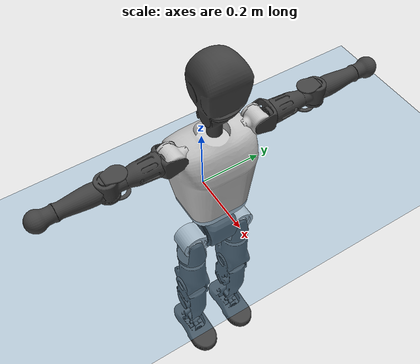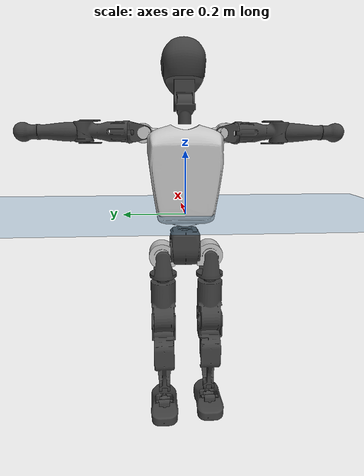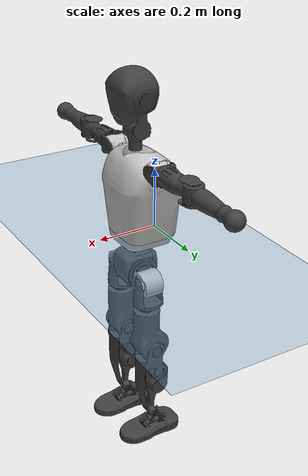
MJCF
<mujoco model="T1">
  <compiler angle="radian" assetdir="assets" balanceinertia="true" inertiafromgeom="false"/>

  <option timestep="0.005" density="1.2" viscosity="2e-05"/>

  <size nkey="1"/>

  <visual>
    <quality shadowsize="8192"/>
    <map shadowclip="0.5"/>
  </visual>

  <default>
    <default class="/">
      <joint armature="0.01" damping="0.01" frictionloss="0.1"/>
      <geom contype="0" conaffinity="0" group="1" solref="-1000 -80"/>
      <site size="0.01 0.005 0.005" group="5"/>
      <general forcelimited="true" biastype="affine" gainprm="25" biasprm="0 -25 -0.6"/>
      <default class="t1">
        <geom rgba="0.25 0.25 0.25 1"/>
        <default class="visual">
          <geom type="mesh" group="2"/>
        </default>
        <default class="collision">
          <geom group="3"/>
        </default>
        <default class="foot">
          <geom size="0.1115 0.05 0.015" type="box" condim="6" group="4" priority="1" solimp="0.015 1 0.015"/>
        </default>
        <default class="reward_collision_sphere">
          <geom group="5" rgba="1 0 0 1"/>
        </default>
      </default>
    </default>
  </default>

  <asset>
    <texture type="skybox" colorspace="auto" name="//unnamed_texture_0" builtin="gradient" rgb1="0.95 0.95 0.95" rgb2="0.95 0.95 0.95" width="100" height="600"/>
    <texture type="2d" colorspace="auto" name="texplane" builtin="checker" rgb1="0.345 0.575 0.748" rgb2="0.345 0.575 0.748" markrgb="1 1 1" width="512" height="512"/>
    <material name="MatPlane" class="/" texture="texplane" texuniform="true" texrepeat="2 2" specular="0.9"/>
    <mesh name="Trunk" class="/" file="Trunk.stl"/>
    <mesh name="H1" class="/" file="H1.stl"/>
    <mesh name="H2" class="/" file="H2.stl"/>
    <mesh name="AL1" class="/" file="AL1.stl"/>
    <mesh name="AL2" class="/" file="AL2.stl"/>
    <mesh name="AL3" class="/" file="AL3.stl"/>
    <mesh name="left_hand_link" class="/" file="left_hand_link.stl"/>
    <mesh name="AR1" class="/" file="AR1.stl"/>
    <mesh name="AR2" class="/" file="AR2.stl"/>
    <mesh name="AR3" class="/" file="AR3.stl"/>
    <mesh name="right_hand_link" class="/" file="right_hand_link.stl"/>
    <mesh name="Waist" class="/" file="Waist.stl"/>
    <mesh name="Hip_Pitch_Left" class="/" file="Hip_Pitch_Left.stl"/>
    <mesh name="Hip_Roll_Left" class="/" file="Hip_Roll_Left.stl"/>
    <mesh name="Hip_Yaw_Left" class="/" file="Hip_Yaw_Left.stl"/>
    <mesh name="Shank_Left" class="/" file="Shank_Left.stl"/>
    <mesh name="Ankle_Cross_Left" class="/" file="Ankle_Cross_Left.stl"/>
    <mesh name="left_foot_link" class="/" file="left_foot_link.stl"/>
    <mesh name="Hip_Pitch_Right" class="/" file="Hip_Pitch_Right.stl"/>
    <mesh name="Hip_Roll_Right" class="/" file="Hip_Roll_Right.stl"/>
    <mesh name="Hip_Yaw_Right" class="/" file="Hip_Yaw_Right.stl"/>
    <mesh name="Shank_Right" class="/" file="Shank_Right.stl"/>
    <mesh name="Ankle_Cross_Right" class="/" file="Ankle_Cross_Right.stl"/>
    <mesh name="right_foot_link" class="/" file="right_foot_link.stl"/>
  </asset>

  <worldbody>
    <geom name="floor" class="/" size="100 100 0.125" type="plane" group="0" material="MatPlane"/>
    <light name="toplight_shadow" class="/" pos="0 0 5" dir="0.0990148 0.0990148 -0.990148" type="directional" ambient="0.04 0.04 0.04" diffuse="0.55 0.55 0.55" specular="0.12 0.12 0.12"/>
    <light name="toplight_fill" class="/" pos="0 0 5" dir="0.0990148 0.0990148 -0.990148" type="directional" castshadow="false" ambient="0.04 0.04 0.04" diffuse="0.3 0.3 0.3" specular="0.08 0.08 0.08"/>
    <body name="trunk" childclass="t1" pos="-0.000120721 -0.00222311 0.000214415" quat="1 -0.000126864 -0.000255304 0.000163149">
      <inertial pos="0.0619774 -0.00287606 0.121234" quat="0.999933 0.00086082 -0.0113598 -0.00216239" mass="12.5875" diaginertia="0.163514 0.0238224 0.108462"/>
      <joint name="//unnamed_joint_0" type="free" armature="0" damping="0" frictionloss="0"/>
      <geom name="//unnamed_geom_1" class="visual" rgba="0.76 0.76 0.76 1" mesh="Trunk"/>
      <geom name="//unnamed_geom_2" class="collision" size="0.0768708 0.102494 0.153742" pos="0.0680569 0 0.137681" type="box"/>
      <geom name="//unnamed_geom_3" class="reward_collision_sphere" size="0.117869" pos="0.0680569 0 0.114734"/>
      <geom name="//unnamed_geom_4" class="reward_collision_sphere" size="0.0153742" pos="0.0680569 0.0674226 0"/>
      <geom name="//unnamed_geom_5" class="reward_collision_sphere" size="0.0153742" pos="0.0680569 -0.0674226 0"/>
      <geom name="//unnamed_geom_6" class="reward_collision_sphere" size="0.0153742" pos="0.0680569 0.0848732 0.206522"/>
      <geom name="//unnamed_geom_7" class="reward_collision_sphere" size="0.0153742" pos="0.0680569 -0.0848732 0.206522"/>
      <site name="imu" pos="0.00446921 -0.000962411 -0.00498543" size="0.0102494"/>
      <camera name="track" pos="0 -1.58642 0" quat="0.707107 0.707107 0 0" mode="trackcom"/>
      <camera name="ego_camera" pos="0.138382 0 0.481884" quat="-0.5 -0.5 0.5 0.5"/>
      <body name="H1" pos="0.0703599 0.000123293 0.280487" quat="1 0.000322327 -0.000117879 0.000155402">
        <inertial pos="-0.000481573 -0.00227833 0.0658121" quat="0.762202 -0.0166648 1.38009e-05 0.647125" mass="0.487425" diaginertia="0.00044656 7.2998e-05 0.000300276"/>
        <joint name="AAHead_yaw" pos="0 0 0" axis="-0.00531554 0.0088879 0.999946" stiffness="0.000222835" range="-1.55047 1.56707" armature="0.00942862" damping="0.00905369" frictionloss="0.0967923"/>
        <geom name="//unnamed_geom_8" class="visual" mesh="H1"/>
        <body name="H2" pos="-0.00346596 0.00328548 0.0682743" quat="0.999999 -0.00139158 -0.000149645 -0.000201917">
          <inertial pos="0.00845577 0.00104155 0.115666" quat="0.988452 0.106186 -0.0745666 -0.0782776" mass="0.701359" diaginertia="0.00387842 0.000624859 0.00340075"/>
          <joint name="Head_pitch" pos="0 0 0" axis="-0.0129443 -0.999916 0.000838368" range="-1.20723 0.305847" armature="0.0112048" damping="0.0124607" frictionloss="0.109411"/>
          <geom name="//unnamed_geom_9" class="visual" mesh="H2"/>
          <geom name="//unnamed_geom_10" class="collision" size="0.0819956" pos="0.0113428 0 0.126208"/>
          <geom name="//unnamed_geom_11" class="reward_collision_sphere" size="0.092245" pos="0.0226856 0 0.114734"/>
        </body>
      </body>
      <body name="AL1" pos="0.0691041 0.0864362 0.252832" quat="1 0.000595638 -0.000353141 -0.000138325">
        <inertial pos="-0.00251754 0.0358008 -0.000479426" quat="0.505029 0.494581 -0.503229 0.497088" mass="0.557587" diaginertia="0.00249745 0.000405725 0.000569528"/>
        <joint name="Left_Shoulder_Pitch" pos="0 0 0" axis="-0.00468537 0.999985 0.00265713" range="-3.34444 1.18038" armature="0.0103666" damping="0.0156035" frictionloss="0.113362"/>
        <geom name="//unnamed_geom_12" class="visual" rgba="0.76 0.76 0.76 1" mesh="AL1"/>
        <body name="AL2" pos="0.00174179 0.041252 0.00231381" quat="1 -0.000124997 0.000601296 0.000385632">
          <inertial pos="0.00205199 0.0287144 -0.00234135" quat="0.485233 0.516997 -0.482413 0.514335" mass="0.174344" diaginertia="0.000762607 0.000113802 0.000349384"/>
          <joint name="Left_Shoulder_Roll" pos="0 0 0" axis="-0.999953 -0.000562255 0.00963477" stiffness="0.0134121" range="-1.52844 1.74202" armature="0.00921492" damping="0.00116538" frictionloss="0.104675"/>
          <geom name="//unnamed_geom_13" class="visual" mesh="AL2"/>
          <body name="AL3" pos="0.00346924 0.0491736 0.0025513" quat="0.999999 -0.00113261 6.37524e-06 -0.000126708">
            <inertial pos="-0.000930359 0.0693143 0.00217179" quat="0.70252 0.711618 0.00751809 0.00313432" mass="1.11201" diaginertia="0.0239779 0.00396559 0.00122077"/>
            <joint name="Left_Elbow_Pitch" pos="0 0 0" axis="0.00268509 -0.999913 -0.0129077" range="-2.22761 2.21561" armature="0.00844726" damping="0" frictionloss="0.105525"/>
            <geom name="//unnamed_geom_14" class="visual" mesh="AL3"/>
            <geom name="//unnamed_geom_15" class="collision" size="0.0307483 0.0768708" pos="0 0.0396604 0" quat="0.707105 0.707108 0 0" type="cylinder"/>
            <geom name="//unnamed_geom_16" class="reward_collision_sphere" size="0.036898"/>
            <body name="left_hand_link" pos="-0.00199161 0.119298 -0.00079514" quat="0.999999 -0.000114898 -0.000306722 -0.000946226">
              <inertial pos="0.00214154 0.0896871 0.000648001" quat="0.701283 0.712837 -0.00748942 0.00311257" mass="0.354698" diaginertia="0.015406 0.00262269 0.000420224"/>
              <joint name="Left_Elbow_Yaw" pos="0 0 0" axis="0.00414208 0.00390668 0.999984" range="-2.44134 0.0508893" armature="0.00944049" damping="0.0236505" frictionloss="0.0980318"/>
              <geom name="//unnamed_geom_17" class="visual" mesh="left_hand_link"/>
              <geom name="//unnamed_geom_18" class="collision" size="0.0307483 0.0896827" pos="0 0.103117 0" quat="0.707105 0.707108 0 0" type="cylinder"/>
              <geom name="//unnamed_geom_19" class="reward_collision_sphere" size="0.0512472"/>
              <geom name="//unnamed_geom_20" class="reward_collision_sphere" size="0.0358731" pos="0 0.0872528 0"/>
              <geom name="//unnamed_geom_21" class="reward_collision_sphere" size="0.0358731" pos="0 0.17054 0"/>
            </body>
          </body>
        </body>
      </body>
      <body name="AR1" pos="0.0673287 -0.0822561 0.253748" quat="0.999999 0.00124246 0.0011517 0.000208506">
        <inertial pos="-0.00220172 -0.0325399 -0.00224256" quat="0.503281 0.49609 -0.510303 0.490096" mass="0.592508" diaginertia="0.00250331 0.000408252 0.000603786"/>
        <joint name="Right_Shoulder_Pitch" pos="0 0 0" axis="-0.000536192 -0.999999 0.0011037" stiffness="0.0136127" range="-1.23978 3.26627" armature="0.0099685" damping="0" frictionloss="0.0903439"/>
        <geom name="//unnamed_geom_22" class="visual" rgba="0.76 0.76 0.76 1" mesh="AR1"/>
        <body name="AR2" pos="-0.00259013 -0.0349545 -0.00165377" quat="1 -2.91507e-05 -0.000482642 -0.000210375">
          <inertial pos="0.00300163 -0.0302217 -0.00194387" quat="0.505715 0.481859 -0.51991 0.491689" mass="0.174331" diaginertia="0.000748317 0.000106475 0.00033959"/>
          <joint name="Right_Shoulder_Roll" pos="0 0 0" axis="-0.999947 0.00989695 -0.00266349" range="-1.68319 1.62787" armature="0.00978337" damping="0.0178965" frictionloss="0.0861596"/>
          <geom name="//unnamed_geom_23" class="visual" mesh="AR2"/>
          <body name="AR3" pos="0.00147322 -0.0453344 0.00320064" quat="1 -0.000101445 -0.00011582 0.000185618">
            <inertial pos="-0.000374508 -0.0664936 -0.00228951" quat="0.707041 0.707167 -0.000284995 0.00286713" mass="1.09287" diaginertia="0.0240145 0.00386609 0.00121493"/>
            <joint name="Right_Elbow_Pitch" pos="0 0 0" axis="0.000581151 0.999992 0.00404337" stiffness="0.00559167" range="-2.25358 2.23321" armature="0.0109185" damping="0.0135179" frictionloss="0.109571"/>
            <geom name="//unnamed_geom_24" class="visual" mesh="AR3"/>
            <geom name="//unnamed_geom_25" class="collision" size="0.0307483 0.0768708" pos="0 -0.0396604 0" quat="0.707105 0.707108 0 0" type="cylinder"/>
            <geom name="//unnamed_geom_26" class="reward_collision_sphere" size="0.036898"/>
            <body name="right_hand_link" pos="-0.00107737 -0.116926 -0.000866666" quat="1 4.90304e-06 -1.21213e-05 -2.06023e-05">
              <inertial pos="0.000101991 -0.0894274 -0.000615709" quat="0.706871 0.707343 -0.000314803 4.59974e-05" mass="0.334355" diaginertia="0.0147325 0.00248724 0.00041484"/>
              <joint name="Right_Elbow_Yaw" pos="0 0 0" axis="-0.000599441 0.00451751 0.99999" stiffness="0.00296847" range="0.000266614 2.4688" armature="0.00982945" damping="0.0194287" frictionloss="0.106295"/>
              <geom name="//unnamed_geom_27" class="visual" mesh="right_hand_link"/>
              <geom name="//unnamed_geom_28" class="collision" size="0.0307483 0.0896827" pos="0 -0.103117 0" quat="0.707105 0.707108 0 0" type="cylinder"/>
              <geom name="//unnamed_geom_29" class="reward_collision_sphere" size="0.0512472"/>
              <geom name="//unnamed_geom_30" class="reward_collision_sphere" size="0.0358731" pos="0 -0.0872528 0"/>
              <geom name="//unnamed_geom_31" class="reward_collision_sphere" size="0.0358731" pos="0 -0.17054 0"/>
            </body>
          </body>
        </body>
      </body>
      <body name="Waist" pos="0.0707586 -0.00101623 -0.134785" quat="0.999999 -5.51714e-05 0.000662527 0.000790643">
        <inertial pos="0.00382102 -0.00285183 0.0104465" quat="0.983971 0.00372692 -0.178277 0.00199521" mass="2.8768" diaginertia="0.0106585 0.00171802 0.00986555"/>
        <joint name="Waist" pos="0 0 0" axis="0.00111781 -0.00493763 0.999987" range="-1.53182 1.58984" armature="0.0098106" damping="0.0165508" frictionloss="0.0994422"/>
        <geom name="//unnamed_geom_32" class="visual" mesh="Waist"/>
        <body name="Hip_Pitch_Left" pos="0.000942389 0.0809292 -0.00204133" quat="0.999999 -0.000220034 6.4684e-05 0.000987376">
          <inertial pos="0.000720256 -0.00836376 -0.0210645" quat="0.975445 0.219058 0.0191951 0.0123357" mass="1.13659" diaginertia="0.0034123 0.000451606 0.0025793"/>
          <joint name="Left_Hip_Pitch" pos="0 0 0" axis="0.0107398 0.999871 0.0119125" stiffness="0.00757985" range="-1.80998 1.52842" armature="0.0112401" damping="0.0125339" frictionloss="0.105932"/>
          <geom name="//unnamed_geom_33" class="visual" rgba="0.76 0.76 0.76 1" mesh="Hip_Pitch_Left"/>
          <body name="Hip_Roll_Left" pos="-0.00206179 -0.00377985 -0.0236732" quat="0.999999 -0.00126601 -0.000408268 -0.000610587">
            <inertial pos="0.00118191 -0.000969706 -0.0597844" quat="0.706856 -0.0178218 -0.0123398 0.707025" mass="0.415622" diaginertia="0.00332611 0.000489966 0.00105303"/>
            <joint name="Left_Hip_Roll" pos="0 0 0" axis="-0.999936 0.0112056 -0.00177986" range="-1.51742 0.219103" armature="0.00910794" damping="0.00392004" frictionloss="0.0917532"/>
            <geom name="//unnamed_geom_34" class="visual" mesh="Hip_Roll_Left"/>
            <geom name="//unnamed_geom_35" class="reward_collision_sphere" size="0.056372"/>
            <body name="Hip_Yaw_Left" pos="0.00347175 0.00107665 -0.0973703" quat="1 0.000218429 0.000133278 -0.000345849">
              <inertial pos="-0.00812827 0.00239493 -0.102255" quat="0.700024 -0.0256821 -0.0291551 0.713062" mass="2.29335" diaginertia="0.0490986 0.00790131 0.00524377"/>
              <joint name="Left_Hip_Yaw" pos="0 0 0" axis="-0.000996975 0.000382797 -0.999999" range="-1.023 0.988179" armature="0.0102202" damping="0.0205047" frictionloss="0.105593"/>
              <geom name="//unnamed_geom_36" class="visual" mesh="Hip_Yaw_Left"/>
              <geom name="//unnamed_geom_37" class="collision" size="0.0512472 0.0819956" type="cylinder"/>
              <body name="Shank_Left" pos="-0.0176736 0.00079116 -0.154612" quat="1 0.000267065 -0.000616687 -0.000248875">
                <inertial pos="-0.00903972 0.000105814 -0.14329" quat="0.997559 0.00141008 -0.023439 0.0657663" mass="1.94926" diaginertia="0.0665728 0.0111877 0.00383966"/>
                <joint name="Left_Knee_Pitch" pos="0 0 0" axis="0.00265242 0.999994 0.00204052" stiffness="0.00802442" range="0.0502794 2.29451" armature="0.00974196" damping="0" frictionloss="0.0899345"/>
                <geom name="//unnamed_geom_38" class="visual" mesh="Shank_Left"/>
                <geom name="//unnamed_geom_39" class="collision" size="0.0512472 0.0768708" pos="0 0 -0.137681" type="cylinder"/>
                <geom name="//unnamed_geom_40" class="reward_collision_sphere" size="0.0666214"/>
                <body name="Ankle_Cross_Left" pos="-0.00215378 0.000453956 -0.321646" quat="1 3.56293e-05 0.000329154 0.000430398">
                  <inertial pos="-0.00652196 0.00277431 -0.0104046" quat="0.441404 0.551587 0.552734 0.44204" mass="0.0795492" diaginertia="5.54238e-05 8.05713e-06 2.29733e-05"/>
                  <joint name="Left_Ankle_Pitch" pos="0 0 0" axis="-0.00499242 0.999987 -0.00104675" range="-0.840653 0.401666" armature="0.00878992" damping="0.00920102" frictionloss="0.105339"/>
                  <geom name="//unnamed_geom_41" class="visual" mesh="Ankle_Cross_Left"/>
                  <body name="left_foot_link" pos="-0.000262591 0.00199556 -0.0161783" quat="1 -0.000155978 -0.000348341 0.000435686">
                    <inertial pos="-0.00119533 0.000152075 -0.0133735" quat="-0.0100994 0.622515 0.00684809 0.782512" mass="0.720363" diaginertia="0.00477259 0.000743262 0.00407627"/>
                    <joint name="Left_Ankle_Roll" pos="0 0 0" axis="-1 -0.000706989 0.000113904" range="-0.423478 0.444139" armature="0.0107717" damping="0" frictionloss="0.107199"/>
                    <geom name="//unnamed_geom_42" class="visual" mesh="left_foot_link"/>
                    <geom name="left_foot" class="foot" size="0.0697203 0.0503106 0.0177484" pos="0.0113428 0 -0.0172102"/>
                    <geom name="//unnamed_geom_44" class="reward_collision_sphere" size="0.0532971" pos="0.0113428 0 -0.0172102"/>
                    <geom name="//unnamed_geom_45" class="reward_collision_sphere" size="0.0307483" pos="0.107757 -0.0182438 -0.0172102"/>
                    <geom name="//unnamed_geom_46" class="reward_collision_sphere" size="0.0307483" pos="-0.0793998 -0.0182438 -0.0172102"/>
                    <site name="left_foot" class="foot" pos="0.0113428 0 -0.0172102" size="0.0102494"/>
                  </body>
                </body>
              </body>
            </body>
          </body>
        </body>
        <body name="Hip_Pitch_Right" pos="-0.000268331 -0.0857321 -0.000950579" quat="0.999999 0.00134816 0.000301729 -3.60492e-05">
          <inertial pos="-0.00140518 0.00957591 -0.0209143" quat="0.974319 -0.224832 0.0119446 0.00322135" mass="1.14395" diaginertia="0.00345164 0.000468289 0.00244966"/>
          <joint name="Right_Hip_Pitch" pos="0 0 0" axis="-0.00369552 -0.999981 -0.00490834" range="-1.58741 1.7941" armature="0.00904345" damping="0.00182411" frictionloss="0.0911596"/>
          <geom name="//unnamed_geom_47" class="visual" rgba="0.76 0.76 0.76 1" mesh="Hip_Pitch_Right"/>
          <body name="Hip_Roll_Right" pos="0.00243905 -0.00371728 -0.0256363" quat="1 0.000326692 -0.000243234 0.000186757">
            <inertial pos="0.00262988 -0.00278243 -0.059301" quat="0.703511 -0.0167568 -0.00219825 0.710483" mass="0.418887" diaginertia="0.00328209 0.00048211 0.00103456"/>
            <joint name="Right_Hip_Roll" pos="0 0 0" axis="-0.99998 -0.00623446 0.000683869" stiffness="0.00267342" range="-0.21472 1.57768" armature="0.011542" damping="0.00967633" frictionloss="0.108589"/>
            <geom name="//unnamed_geom_48" class="visual" mesh="Hip_Roll_Right"/>
            <geom name="//unnamed_geom_49" class="reward_collision_sphere" size="0.056372"/>
            <body name="Hip_Yaw_Right" pos="0.00268563 -0.0021613 -0.0973411" quat="1 -0.000393769 -0.000120485 -0.000340234">
              <inertial pos="-0.00653867 -0.00124894 -0.0998894" quat="0.713893 -0.0320978 -0.0334484 0.698719" mass="2.42383" diaginertia="0.0482156 0.00807184 0.00507527"/>
              <joint name="Right_Hip_Yaw" pos="0 0 0" axis="0.00213465 0.00742654 -0.99997" range="-1.06186 1.00594" armature="0.0118114" damping="0.0108824" frictionloss="0.0941429"/>
              <geom name="//unnamed_geom_50" class="visual" mesh="Hip_Yaw_Right"/>
              <geom name="//unnamed_geom_51" class="collision" size="0.0512472 0.0819956" type="cylinder"/>
              <body name="Shank_Right" pos="-0.0114984 -0.00254388 -0.152961" quat="1 -0.000317035 0.00033324 0.000279393">
                <inertial pos="-0.00793623 0.000569993 -0.14301" quat="0.999201 0.00310784 -0.0236022 -0.0320961" mass="1.92775" diaginertia="0.0647594 0.0109592 0.00375671"/>
                <joint name="Right_Knee_Pitch" pos="0 0 0" axis="0.000705902 -0.999999 0.00137404" stiffness="0.000457371" range="-2.34597 -0.00190763" armature="0.00943606" damping="0.0118632" frictionloss="0.0888627"/>
                <geom name="//unnamed_geom_52" class="visual" mesh="Shank_Right"/>
                <geom name="//unnamed_geom_53" class="collision" size="0.0512472 0.0768708" pos="0 0 -0.137681" type="cylinder"/>
                <geom name="//unnamed_geom_54" class="reward_collision_sphere" size="0.0666214"/>
                <body name="Ankle_Cross_Right" pos="0.00270844 -2.0235e-05 -0.317877" quat="0.999999 0.00104821 -0.00122861 0.00059449">
                  <inertial pos="-0.00691732 -0.00208299 -0.00885691" quat="0.452226 0.54869 0.547072 0.44175" mass="0.0786208" diaginertia="5.6348e-05 8.07535e-06 2.26848e-05"/>
                  <joint name="Right_Ankle_Pitch" pos="0 0 0" axis="-0.0165707 -0.999862 -0.000893544" range="-0.343296 0.873499" armature="0.0104074" damping="0.00589376" frictionloss="0.0947875"/>
                  <geom name="//unnamed_geom_55" class="visual" mesh="Ankle_Cross_Right"/>
                  <body name="right_foot_link" pos="-0.000608034 0.00057347 -0.0157798" quat="1 0.000183206 -0.000925264 0.000173164">
                    <inertial pos="-0.000455895 0.00288942 -0.0102869" quat="-0.00927327 0.61777 -0.00732875 0.78627" mass="0.71303" diaginertia="0.00509988 0.000747217 0.00428932"/>
                    <joint name="Right_Ankle_Roll" pos="0 0 0" axis="-0.999995 0.00300568 0.000380593" range="-0.508937 0.452578" armature="0.0100594" damping="0.00466267" frictionloss="0.0977208"/>
                    <geom name="//unnamed_geom_56" class="visual" mesh="right_foot_link"/>
                    <geom name="right_foot" class="foot" size="0.0701306 0.0482515 0.0166438" pos="0.0113428 0 -0.0172102"/>
                    <geom name="//unnamed_geom_58" class="reward_collision_sphere" size="0.0409978"/>
                    <geom name="//unnamed_geom_59" class="reward_collision_sphere" size="0.0307483" pos="0.0113428 0 -0.0172102"/>
                    <geom name="//unnamed_geom_60" class="reward_collision_sphere" size="0.0307483" pos="0.107757 0.0182438 -0.0172102"/>
                    <geom name="//unnamed_geom_61" class="reward_collision_sphere" size="0.0307483" pos="-0.0793998 0.0182438 -0.0172102"/>
                    <site name="right_foot" class="foot" pos="0.0113428 0 -0.0172102" size="0.0102494"/>
                  </body>
                </body>
              </body>
            </body>
          </body>
        </body>
      </body>
    </body>
  </worldbody>

  <contact>
    <pair class="/" geom1="floor" geom2="left_foot" name="//unnamed_contact_0"/>
    <pair class="/" geom1="floor" geom2="right_foot" name="//unnamed_contact_1"/>
  </contact>

  <actuator>
    <general name="AAHead_yaw" class="/" joint="AAHead_yaw" forcerange="-6.71233 6.71233" gainprm="24.0292" biasprm="0 -24.0292 -0.545528"/>
    <general name="Head_pitch" class="/" joint="Head_pitch" forcerange="-7.46832 7.46832" gainprm="24.0292" biasprm="0 -24.0292 -0.545528"/>
    <general name="Left_Shoulder_Pitch" class="/" joint="Left_Shoulder_Pitch" forcerange="-16.8253 16.8253" gainprm="24.0292" biasprm="0 -24.0292 -0.545528"/>
    <general name="Left_Shoulder_Roll" class="/" joint="Left_Shoulder_Roll" forcerange="-17.94 17.94" gainprm="24.0292" biasprm="0 -24.0292 -0.545528"/>
    <general name="Left_Elbow_Pitch" class="/" joint="Left_Elbow_Pitch" forcerange="-18.2056 18.2056" gainprm="24.0292" biasprm="0 -24.0292 -0.545528"/>
    <general name="Left_Elbow_Yaw" class="/" joint="Left_Elbow_Yaw" forcerange="-17.7982 17.7982" gainprm="24.0292" biasprm="0 -24.0292 -0.545528"/>
    <general name="Right_Shoulder_Pitch" class="/" joint="Right_Shoulder_Pitch" forcerange="-18.7012 18.7012" gainprm="24.0292" biasprm="0 -24.0292 -0.545528"/>
    <general name="Right_Shoulder_Roll" class="/" joint="Right_Shoulder_Roll" forcerange="-16.5718 16.5718" gainprm="24.0292" biasprm="0 -24.0292 -0.545528"/>
    <general name="Right_Elbow_Pitch" class="/" joint="Right_Elbow_Pitch" forcerange="-20.3534 20.3534" gainprm="24.0292" biasprm="0 -24.0292 -0.545528"/>
    <general name="Right_Elbow_Yaw" class="/" joint="Right_Elbow_Yaw" forcerange="-16.5929 16.5929" gainprm="24.0292" biasprm="0 -24.0292 -0.545528"/>
    <general name="Waist" class="/" joint="Waist" forcerange="-31.7658 31.7658" gainprm="24.0292" biasprm="0 -24.0292 -0.545528"/>
    <general name="Left_Hip_Pitch" class="/" joint="Left_Hip_Pitch" forcerange="-41.5773 41.5773" gainprm="24.0292" biasprm="0 -24.0292 -0.545528"/>
    <general name="Left_Hip_Roll" class="/" joint="Left_Hip_Roll" forcerange="-31.6269 31.6269" gainprm="24.0292" biasprm="0 -24.0292 -0.545528"/>
    <general name="Left_Hip_Yaw" class="/" joint="Left_Hip_Yaw" forcerange="-28.2967 28.2967" gainprm="24.0292" biasprm="0 -24.0292 -0.545528"/>
    <general name="Left_Knee_Pitch" class="/" joint="Left_Knee_Pitch" forcerange="-61.5817 61.5817" gainprm="24.0292" biasprm="0 -24.0292 -0.545528"/>
    <general name="Left_Ankle_Pitch" class="/" joint="Left_Ankle_Pitch" forcerange="-18.4334 18.4334" gainprm="24.0292" biasprm="0 -24.0292 -0.545528"/>
    <general name="Left_Ankle_Roll" class="/" joint="Left_Ankle_Roll" forcerange="-17.337 17.337" gainprm="24.0292" biasprm="0 -24.0292 -0.545528"/>
    <general name="Right_Hip_Pitch" class="/" joint="Right_Hip_Pitch" forcerange="-46.4135 46.4135" gainprm="24.0292" biasprm="0 -24.0292 -0.545528"/>
    <general name="Right_Hip_Roll" class="/" joint="Right_Hip_Roll" forcerange="-30.8668 30.8668" gainprm="24.0292" biasprm="0 -24.0292 -0.545528"/>
    <general name="Right_Hip_Yaw" class="/" joint="Right_Hip_Yaw" forcerange="-28.8914 28.8914" gainprm="24.0292" biasprm="0 -24.0292 -0.545528"/>
    <general name="Right_Knee_Pitch" class="/" joint="Right_Knee_Pitch" forcerange="-66.8037 66.8037" gainprm="24.0292" biasprm="0 -24.0292 -0.545528"/>
    <general name="Right_Ankle_Pitch" class="/" joint="Right_Ankle_Pitch" forcerange="-20.6621 20.6621" gainprm="24.0292" biasprm="0 -24.0292 -0.545528"/>
    <general name="Right_Ankle_Roll" class="/" joint="Right_Ankle_Roll" forcerange="-15.7917 15.7917" gainprm="24.0292" biasprm="0 -24.0292 -0.545528"/>
  </actuator>

  <sensor>
    <gyro site="imu" name="imu_angular_velocity"/>
    <velocimeter site="imu" name="imu_linear_velocity"/>
    <framelinvel objtype="site" objname="left_foot" name="left_foot_global_linear_velocity"/>
    <framelinvel objtype="site" objname="right_foot" name="right_foot_global_linear_velocity"/>
  </sensor>

  <keyframe>
    <key name="home" qpos="0 0 0.6385 1 0 0 0 0 0 0 1.4 0 -0.4 0 -1.4 0 0.4 0 -0.4 0 0 0.8 -0.4 0 0.4 0 0 -0.8 0.4 0"/>
  </keyframe>
</mujoco>
